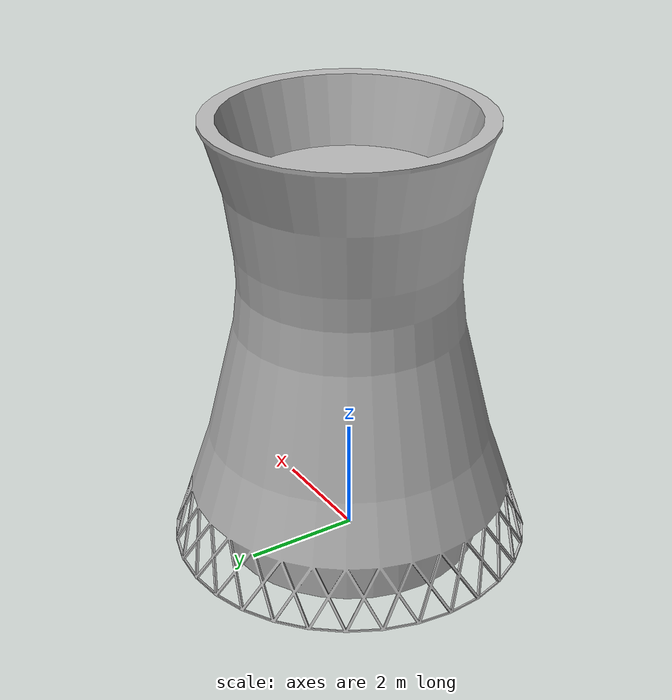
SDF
<?xml version="1.0" ?>
<sdf version="1.6">
  <model name="reactor">
    <static>true</static>
    <link name="link">
      <collision name="collision">
        <geometry>
          <mesh>
            <scale>0.3 0.3 0.3</scale>
            <uri>model://reactor/meshes/reactor.dae</uri>
          </mesh>
        </geometry>
      </collision>
      <visual name="visual">
        <geometry>
          <mesh>
            <scale>0.3 0.3 0.3</scale>
            <uri>model://reactor/meshes/reactor.dae</uri>
          </mesh>
        </geometry>
      </visual>
    </link>
  </model>
</sdf>
